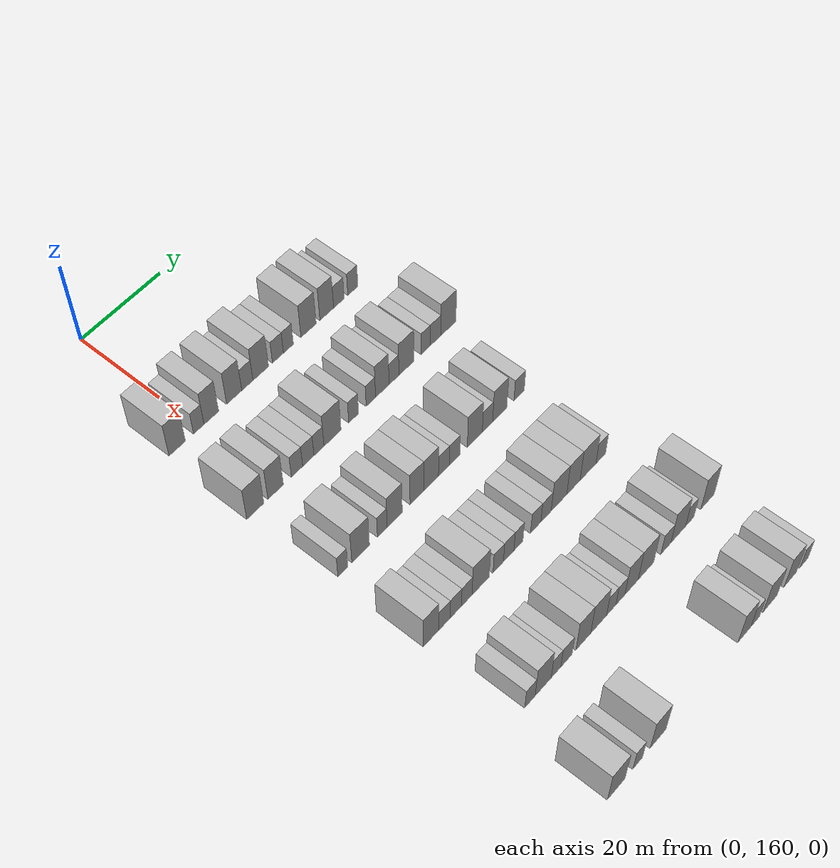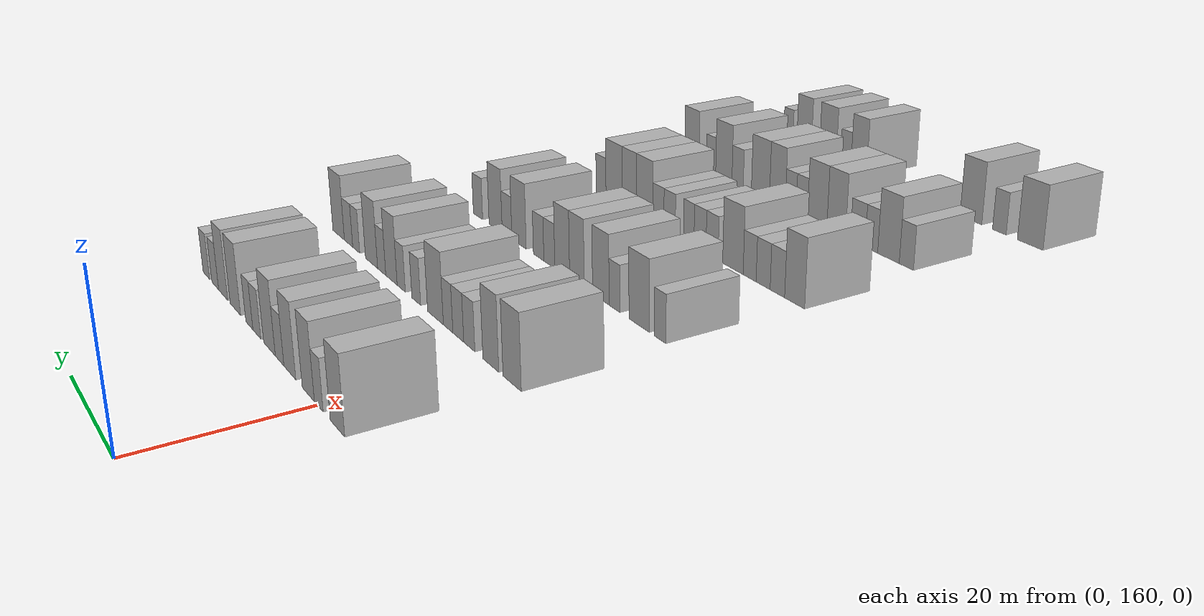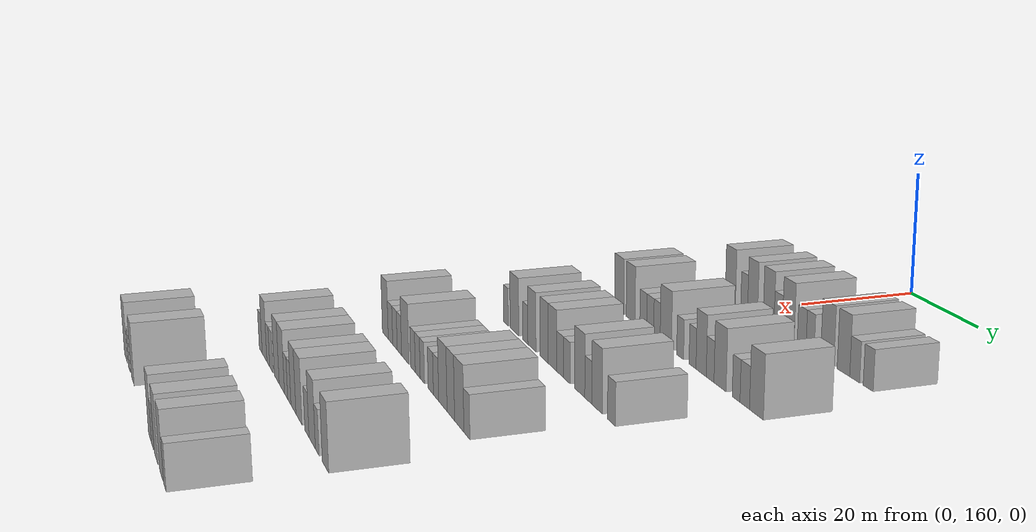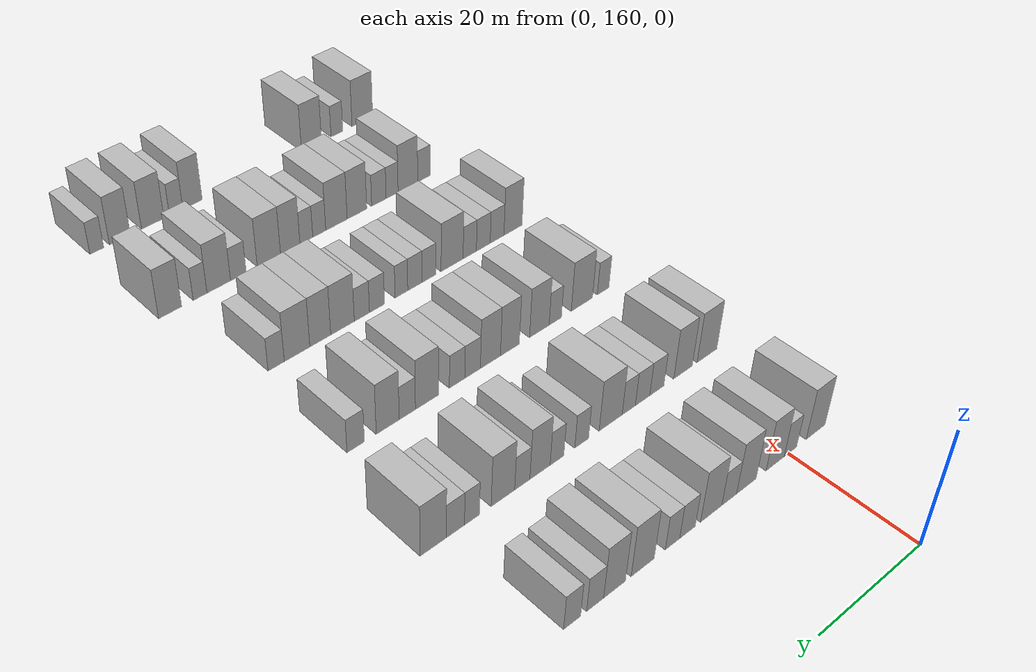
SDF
<sdf version="1.6">
 <world name="default">
  <model name="building_131">
   <static>1</static>
   <pose>25.0000 154.3337 0 0.000000 0.000000 0.000000</pose>
   <link name="link">
    <pose>0 0 4.50 0 0 0</pose>
    <collision name="collision"><geometry><box><size>10.0000 3.9862 9.0000</size></box></geometry></collision>
    <visual name="visual">
     <cast_shadows>0</cast_shadows>
     <geometry><box><size>10.0000 3.9862 9.0000</size></box></geometry>
     <material>
      <script>
       <uri>model://HANNAS_wall/materials/scripts</uri>
       <uri>model://HANNAS_wall/materials/textures</uri>
       <name>vrc/HANNAS_wall</name>
      </script>
     </material>
    </visual>
   </link>
  </model>
  <model name="building_132">
   <static>1</static>
   <pose>25.0000 159.6151 0 0.000000 0.000000 0.000000</pose>
   <link name="link">
    <pose>0 0 3.00 0 0 0</pose>
    <collision name="collision"><geometry><box><size>10.0000 2.5767 6.0000</size></box></geometry></collision>
    <visual name="visual">
     <cast_shadows>0</cast_shadows>
     <geometry><box><size>10.0000 2.5767 6.0000</size></box></geometry>
     <material>
      <script>
       <uri>model://HANNAS_wall/materials/scripts</uri>
       <uri>model://HANNAS_wall/materials/textures</uri>
       <name>vrc/HANNAS_wall</name>
      </script>
     </material>
    </visual>
   </link>
  </model>
  <model name="building_133">
   <static>1</static>
   <pose>25.0000 162.7344 0 0.000000 0.000000 0.000000</pose>
   <link name="link">
    <pose>0 0 4.50 0 0 0</pose>
    <collision name="collision"><geometry><box><size>10.0000 3.6619 9.0000</size></box></geometry></collision>
    <visual name="visual">
     <cast_shadows>0</cast_shadows>
     <geometry><box><size>10.0000 3.6619 9.0000</size></box></geometry>
     <material>
      <script>
       <uri>model://HANNAS_wall/materials/scripts</uri>
       <uri>model://HANNAS_wall/materials/textures</uri>
       <name>vrc/HANNAS_wall</name>
      </script>
     </material>
    </visual>
   </link>
  </model>
  <model name="building_134">
   <static>1</static>
   <pose>25.0000 168.4861 0 0.000000 0.000000 0.000000</pose>
   <link name="link">
    <pose>0 0 4.50 0 0 0</pose>
    <collision name="collision"><geometry><box><size>10.0000 3.8416 9.0000</size></box></geometry></collision>
    <visual name="visual">
     <cast_shadows>0</cast_shadows>
     <geometry><box><size>10.0000 3.8416 9.0000</size></box></geometry>
     <material>
      <script>
       <uri>model://HANNAS_wall/materials/scripts</uri>
       <uri>model://HANNAS_wall/materials/textures</uri>
       <name>vrc/HANNAS_wall</name>
      </script>
     </material>
    </visual>
   </link>
  </model>
  <model name="building_135">
   <static>1</static>
   <pose>25.0000 171.8404 0 0.000000 0.000000 0.000000</pose>
   <link name="link">
    <pose>0 0 3.00 0 0 0</pose>
    <collision name="collision"><geometry><box><size>10.0000 2.8668 6.0000</size></box></geometry></collision>
    <visual name="visual">
     <cast_shadows>0</cast_shadows>
     <geometry><box><size>10.0000 2.8668 6.0000</size></box></geometry>
     <material>
      <script>
       <uri>model://HANNAS_wall/materials/scripts</uri>
       <uri>model://HANNAS_wall/materials/textures</uri>
       <name>vrc/HANNAS_wall</name>
      </script>
     </material>
    </visual>
   </link>
  </model>
  <model name="building_136">
   <static>1</static>
   <pose>25.0000 175.2895 0 0.000000 0.000000 0.000000</pose>
   <link name="link">
    <pose>0 0 4.50 0 0 0</pose>
    <collision name="collision"><geometry><box><size>10.0000 4.0314 9.0000</size></box></geometry></collision>
    <visual name="visual">
     <cast_shadows>0</cast_shadows>
     <geometry><box><size>10.0000 4.0314 9.0000</size></box></geometry>
     <material>
      <script>
       <uri>model://HANNAS_wall/materials/scripts</uri>
       <uri>model://HANNAS_wall/materials/textures</uri>
       <name>vrc/HANNAS_wall</name>
      </script>
     </material>
    </visual>
   </link>
  </model>
  <model name="building_137">
   <static>1</static>
   <pose>25.0000 179.7443 0 0.000000 0.000000 0.000000</pose>
   <link name="link">
    <pose>0 0 3.00 0 0 0</pose>
    <collision name="collision"><geometry><box><size>10.0000 2.8782 6.0000</size></box></geometry></collision>
    <visual name="visual">
     <cast_shadows>0</cast_shadows>
     <geometry><box><size>10.0000 2.8782 6.0000</size></box></geometry>
     <material>
      <script>
       <uri>model://HANNAS_wall/materials/scripts</uri>
       <uri>model://HANNAS_wall/materials/textures</uri>
       <name>vrc/HANNAS_wall</name>
      </script>
     </material>
    </visual>
   </link>
  </model>
  <model name="building_138">
   <static>1</static>
   <pose>25.0000 182.4941 0 0.000000 0.000000 0.000000</pose>
   <link name="link">
    <pose>0 0 3.00 0 0 0</pose>
    <collision name="collision"><geometry><box><size>10.0000 2.6215 6.0000</size></box></geometry></collision>
    <visual name="visual">
     <cast_shadows>0</cast_shadows>
     <geometry><box><size>10.0000 2.6215 6.0000</size></box></geometry>
     <material>
      <script>
       <uri>model://HANNAS_wall/materials/scripts</uri>
       <uri>model://HANNAS_wall/materials/textures</uri>
       <name>vrc/HANNAS_wall</name>
      </script>
     </material>
    </visual>
   </link>
  </model>
  <model name="building_139">
   <static>1</static>
   <pose>25.0000 187.8388 0 0.000000 0.000000 0.000000</pose>
   <link name="link">
    <pose>0 0 4.50 0 0 0</pose>
    <collision name="collision"><geometry><box><size>10.0000 4.0679 9.0000</size></box></geometry></collision>
    <visual name="visual">
     <cast_shadows>0</cast_shadows>
     <geometry><box><size>10.0000 4.0679 9.0000</size></box></geometry>
     <material>
      <script>
       <uri>model://HANNAS_wall/materials/scripts</uri>
       <uri>model://HANNAS_wall/materials/textures</uri>
       <name>vrc/HANNAS_wall</name>
      </script>
     </material>
    </visual>
   </link>
  </model>
  <model name="building_140">
   <static>1</static>
   <pose>25.0000 192.7403 0 0.000000 0.000000 0.000000</pose>
   <link name="link">
    <pose>0 0 4.50 0 0 0</pose>
    <collision name="collision"><geometry><box><size>10.0000 3.7349 9.0000</size></box></geometry></collision>
    <visual name="visual">
     <cast_shadows>0</cast_shadows>
     <geometry><box><size>10.0000 3.7349 9.0000</size></box></geometry>
     <material>
      <script>
       <uri>model://HANNAS_wall/materials/scripts</uri>
       <uri>model://HANNAS_wall/materials/textures</uri>
       <name>vrc/HANNAS_wall</name>
      </script>
     </material>
    </visual>
   </link>
  </model>
  <model name="building_141">
   <static>1</static>
   <pose>25.0000 196.0452 0 0.000000 0.000000 0.000000</pose>
   <link name="link">
    <pose>0 0 3.00 0 0 0</pose>
    <collision name="collision"><geometry><box><size>10.0000 2.8749 6.0000</size></box></geometry></collision>
    <visual name="visual">
     <cast_shadows>0</cast_shadows>
     <geometry><box><size>10.0000 2.8749 6.0000</size></box></geometry>
     <material>
      <script>
       <uri>model://HANNAS_wall/materials/scripts</uri>
       <uri>model://HANNAS_wall/materials/textures</uri>
       <name>vrc/HANNAS_wall</name>
      </script>
     </material>
    </visual>
   </link>
  </model>
  <model name="building_142">
   <static>1</static>
   <pose>25.0000 199.8850 0 0.000000 0.000000 0.000000</pose>
   <link name="link">
    <pose>0 0 3.00 0 0 0</pose>
    <collision name="collision"><geometry><box><size>10.0000 2.8047 6.0000</size></box></geometry></collision>
    <visual name="visual">
     <cast_shadows>0</cast_shadows>
     <geometry><box><size>10.0000 2.8047 6.0000</size></box></geometry>
     <material>
      <script>
       <uri>model://HANNAS_wall/materials/scripts</uri>
       <uri>model://HANNAS_wall/materials/textures</uri>
       <name>vrc/HANNAS_wall</name>
      </script>
     </material>
    </visual>
   </link>
  </model>
  <model name="building_296">
   <static>1</static>
   <pose>44.0000 153.7739 0 0.000000 0.000000 0.000000</pose>
   <link name="link">
    <pose>0 0 4.50 0 0 0</pose>
    <collision name="collision"><geometry><box><size>10.0000 4.1835 9.0000</size></box></geometry></collision>
    <visual name="visual">
     <cast_shadows>0</cast_shadows>
     <geometry><box><size>10.0000 4.1835 9.0000</size></box></geometry>
     <material>
      <script>
       <uri>model://HANNAS_wall/materials/scripts</uri>
       <uri>model://HANNAS_wall/materials/textures</uri>
       <name>vrc/HANNAS_wall</name>
      </script>
     </material>
    </visual>
   </link>
  </model>
  <model name="building_297">
   <static>1</static>
   <pose>44.0000 158.7824 0 0.000000 0.000000 0.000000</pose>
   <link name="link">
    <pose>0 0 4.50 0 0 0</pose>
    <collision name="collision"><geometry><box><size>10.0000 3.8334 9.0000</size></box></geometry></collision>
    <visual name="visual">
     <cast_shadows>0</cast_shadows>
     <geometry><box><size>10.0000 3.8334 9.0000</size></box></geometry>
     <material>
      <script>
       <uri>model://HANNAS_wall/materials/scripts</uri>
       <uri>model://HANNAS_wall/materials/textures</uri>
       <name>vrc/HANNAS_wall</name>
      </script>
     </material>
    </visual>
   </link>
  </model>
  <model name="building_298">
   <static>1</static>
   <pose>44.0000 164.1197 0 0.000000 0.000000 0.000000</pose>
   <link name="link">
    <pose>0 0 3.00 0 0 0</pose>
    <collision name="collision"><geometry><box><size>10.0000 2.8412 6.0000</size></box></geometry></collision>
    <visual name="visual">
     <cast_shadows>0</cast_shadows>
     <geometry><box><size>10.0000 2.8412 6.0000</size></box></geometry>
     <material>
      <script>
       <uri>model://HANNAS_wall/materials/scripts</uri>
       <uri>model://HANNAS_wall/materials/textures</uri>
       <name>vrc/HANNAS_wall</name>
      </script>
     </material>
    </visual>
   </link>
  </model>
  <model name="building_299">
   <static>1</static>
   <pose>44.0000 166.9722 0 0.000000 0.000000 0.000000</pose>
   <link name="link">
    <pose>0 0 3.00 0 0 0</pose>
    <collision name="collision"><geometry><box><size>10.0000 2.8637 6.0000</size></box></geometry></collision>
    <visual name="visual">
     <cast_shadows>0</cast_shadows>
     <geometry><box><size>10.0000 2.8637 6.0000</size></box></geometry>
     <material>
      <script>
       <uri>model://HANNAS_wall/materials/scripts</uri>
       <uri>model://HANNAS_wall/materials/textures</uri>
       <name>vrc/HANNAS_wall</name>
      </script>
     </material>
    </visual>
   </link>
  </model>
  <model name="building_300">
   <static>1</static>
   <pose>44.0000 169.6895 0 0.000000 0.000000 0.000000</pose>
   <link name="link">
    <pose>0 0 3.00 0 0 0</pose>
    <collision name="collision"><geometry><box><size>10.0000 2.5710 6.0000</size></box></geometry></collision>
    <visual name="visual">
     <cast_shadows>0</cast_shadows>
     <geometry><box><size>10.0000 2.5710 6.0000</size></box></geometry>
     <material>
      <script>
       <uri>model://HANNAS_wall/materials/scripts</uri>
       <uri>model://HANNAS_wall/materials/textures</uri>
       <name>vrc/HANNAS_wall</name>
      </script>
     </material>
    </visual>
   </link>
  </model>
  <model name="building_301">
   <static>1</static>
   <pose>44.0000 173.1825 0 0.000000 0.000000 0.000000</pose>
   <link name="link">
    <pose>0 0 4.50 0 0 0</pose>
    <collision name="collision"><geometry><box><size>10.0000 4.4149 9.0000</size></box></geometry></collision>
    <visual name="visual">
     <cast_shadows>0</cast_shadows>
     <geometry><box><size>10.0000 4.4149 9.0000</size></box></geometry>
     <material>
      <script>
       <uri>model://HANNAS_wall/materials/scripts</uri>
       <uri>model://HANNAS_wall/materials/textures</uri>
       <name>vrc/HANNAS_wall</name>
      </script>
     </material>
    </visual>
   </link>
  </model>
  <model name="building_302">
   <static>1</static>
   <pose>44.0000 178.6826 0 0.000000 0.000000 0.000000</pose>
   <link name="link">
    <pose>0 0 3.00 0 0 0</pose>
    <collision name="collision"><geometry><box><size>10.0000 2.5852 6.0000</size></box></geometry></collision>
    <visual name="visual">
     <cast_shadows>0</cast_shadows>
     <geometry><box><size>10.0000 2.5852 6.0000</size></box></geometry>
     <material>
      <script>
       <uri>model://HANNAS_wall/materials/scripts</uri>
       <uri>model://HANNAS_wall/materials/textures</uri>
       <name>vrc/HANNAS_wall</name>
      </script>
     </material>
    </visual>
   </link>
  </model>
  <model name="building_303">
   <static>1</static>
   <pose>44.0000 183.2300 0 0.000000 0.000000 0.000000</pose>
   <link name="link">
    <pose>0 0 3.00 0 0 0</pose>
    <collision name="collision"><geometry><box><size>10.0000 2.5097 6.0000</size></box></geometry></collision>
    <visual name="visual">
     <cast_shadows>0</cast_shadows>
     <geometry><box><size>10.0000 2.5097 6.0000</size></box></geometry>
     <material>
      <script>
       <uri>model://HANNAS_wall/materials/scripts</uri>
       <uri>model://HANNAS_wall/materials/textures</uri>
       <name>vrc/HANNAS_wall</name>
      </script>
     </material>
    </visual>
   </link>
  </model>
  <model name="building_304">
   <static>1</static>
   <pose>44.0000 186.2967 0 0.000000 0.000000 0.000000</pose>
   <link name="link">
    <pose>0 0 4.50 0 0 0</pose>
    <collision name="collision"><geometry><box><size>10.0000 3.6238 9.0000</size></box></geometry></collision>
    <visual name="visual">
     <cast_shadows>0</cast_shadows>
     <geometry><box><size>10.0000 3.6238 9.0000</size></box></geometry>
     <material>
      <script>
       <uri>model://HANNAS_wall/materials/scripts</uri>
       <uri>model://HANNAS_wall/materials/textures</uri>
       <name>vrc/HANNAS_wall</name>
      </script>
     </material>
    </visual>
   </link>
  </model>
  <model name="building_305">
   <static>1</static>
   <pose>44.0000 189.4411 0 0.000000 0.000000 0.000000</pose>
   <link name="link">
    <pose>0 0 3.00 0 0 0</pose>
    <collision name="collision"><geometry><box><size>10.0000 2.6650 6.0000</size></box></geometry></collision>
    <visual name="visual">
     <cast_shadows>0</cast_shadows>
     <geometry><box><size>10.0000 2.6650 6.0000</size></box></geometry>
     <material>
      <script>
       <uri>model://HANNAS_wall/materials/scripts</uri>
       <uri>model://HANNAS_wall/materials/textures</uri>
       <name>vrc/HANNAS_wall</name>
      </script>
     </material>
    </visual>
   </link>
  </model>
  <model name="building_306">
   <static>1</static>
   <pose>44.0000 192.8111 0 0.000000 0.000000 0.000000</pose>
   <link name="link">
    <pose>0 0 4.50 0 0 0</pose>
    <collision name="collision"><geometry><box><size>10.0000 4.0751 9.0000</size></box></geometry></collision>
    <visual name="visual">
     <cast_shadows>0</cast_shadows>
     <geometry><box><size>10.0000 4.0751 9.0000</size></box></geometry>
     <material>
      <script>
       <uri>model://HANNAS_wall/materials/scripts</uri>
       <uri>model://HANNAS_wall/materials/textures</uri>
       <name>vrc/HANNAS_wall</name>
      </script>
     </material>
    </visual>
   </link>
  </model>
  <model name="building_307">
   <static>1</static>
   <pose>44.0000 198.0953 0 0.000000 0.000000 0.000000</pose>
   <link name="link">
    <pose>0 0 3.00 0 0 0</pose>
    <collision name="collision"><geometry><box><size>10.0000 2.4933 6.0000</size></box></geometry></collision>
    <visual name="visual">
     <cast_shadows>0</cast_shadows>
     <geometry><box><size>10.0000 2.4933 6.0000</size></box></geometry>
     <material>
      <script>
       <uri>model://HANNAS_wall/materials/scripts</uri>
       <uri>model://HANNAS_wall/materials/textures</uri>
       <name>vrc/HANNAS_wall</name>
      </script>
     </material>
    </visual>
   </link>
  </model>
  <model name="building_308">
   <static>1</static>
   <pose>44.0000 200.8398 0 0.000000 0.000000 0.000000</pose>
   <link name="link">
    <pose>0 0 3.00 0 0 0</pose>
    <collision name="collision"><geometry><box><size>10.0000 2.9956 6.0000</size></box></geometry></collision>
    <visual name="visual">
     <cast_shadows>0</cast_shadows>
     <geometry><box><size>10.0000 2.9956 6.0000</size></box></geometry>
     <material>
      <script>
       <uri>model://HANNAS_wall/materials/scripts</uri>
       <uri>model://HANNAS_wall/materials/textures</uri>
       <name>vrc/HANNAS_wall</name>
      </script>
     </material>
    </visual>
   </link>
  </model>
  <model name="building_309">
   <static>1</static>
   <pose>44.0000 204.4687 0 0.000000 0.000000 0.000000</pose>
   <link name="link">
    <pose>0 0 4.50 0 0 0</pose>
    <collision name="collision"><geometry><box><size>10.0000 4.2623 9.0000</size></box></geometry></collision>
    <visual name="visual">
     <cast_shadows>0</cast_shadows>
     <geometry><box><size>10.0000 4.2623 9.0000</size></box></geometry>
     <material>
      <script>
       <uri>model://HANNAS_wall/materials/scripts</uri>
       <uri>model://HANNAS_wall/materials/textures</uri>
       <name>vrc/HANNAS_wall</name>
      </script>
     </material>
    </visual>
   </link>
  </model>
  <model name="building_465">
   <static>1</static>
   <pose>63.0000 154.5711 0 0.000000 0.000000 0.000000</pose>
   <link name="link">
    <pose>0 0 3.00 0 0 0</pose>
    <collision name="collision"><geometry><box><size>10.0000 2.4377 6.0000</size></box></geometry></collision>
    <visual name="visual">
     <cast_shadows>0</cast_shadows>
     <geometry><box><size>10.0000 2.4377 6.0000</size></box></geometry>
     <material>
      <script>
       <uri>model://HANNAS_wall/materials/scripts</uri>
       <uri>model://HANNAS_wall/materials/textures</uri>
       <name>vrc/HANNAS_wall</name>
      </script>
     </material>
    </visual>
   </link>
  </model>
  <model name="building_466">
   <static>1</static>
   <pose>63.0000 158.9929 0 0.000000 0.000000 0.000000</pose>
   <link name="link">
    <pose>0 0 4.50 0 0 0</pose>
    <collision name="collision"><geometry><box><size>10.0000 4.4060 9.0000</size></box></geometry></collision>
    <visual name="visual">
     <cast_shadows>0</cast_shadows>
     <geometry><box><size>10.0000 4.4060 9.0000</size></box></geometry>
     <material>
      <script>
       <uri>model://HANNAS_wall/materials/scripts</uri>
       <uri>model://HANNAS_wall/materials/textures</uri>
       <name>vrc/HANNAS_wall</name>
      </script>
     </material>
    </visual>
   </link>
  </model>
  <model name="building_467">
   <static>1</static>
   <pose>63.0000 164.4352 0 0.000000 0.000000 0.000000</pose>
   <link name="link">
    <pose>0 0 3.00 0 0 0</pose>
    <collision name="collision"><geometry><box><size>10.0000 2.4786 6.0000</size></box></geometry></collision>
    <visual name="visual">
     <cast_shadows>0</cast_shadows>
     <geometry><box><size>10.0000 2.4786 6.0000</size></box></geometry>
     <material>
      <script>
       <uri>model://HANNAS_wall/materials/scripts</uri>
       <uri>model://HANNAS_wall/materials/textures</uri>
       <name>vrc/HANNAS_wall</name>
      </script>
     </material>
    </visual>
   </link>
  </model>
  <model name="building_468">
   <static>1</static>
   <pose>63.0000 167.6149 0 0.000000 0.000000 0.000000</pose>
   <link name="link">
    <pose>0 0 4.50 0 0 0</pose>
    <collision name="collision"><geometry><box><size>10.0000 3.8808 9.0000</size></box></geometry></collision>
    <visual name="visual">
     <cast_shadows>0</cast_shadows>
     <geometry><box><size>10.0000 3.8808 9.0000</size></box></geometry>
     <material>
      <script>
       <uri>model://HANNAS_wall/materials/scripts</uri>
       <uri>model://HANNAS_wall/materials/textures</uri>
       <name>vrc/HANNAS_wall</name>
      </script>
     </material>
    </visual>
   </link>
  </model>
  <model name="building_469">
   <static>1</static>
   <pose>63.0000 173.3742 0 0.000000 0.000000 0.000000</pose>
   <link name="link">
    <pose>0 0 4.50 0 0 0</pose>
    <collision name="collision"><geometry><box><size>10.0000 3.6379 9.0000</size></box></geometry></collision>
    <visual name="visual">
     <cast_shadows>0</cast_shadows>
     <geometry><box><size>10.0000 3.6379 9.0000</size></box></geometry>
     <material>
      <script>
       <uri>model://HANNAS_wall/materials/scripts</uri>
       <uri>model://HANNAS_wall/materials/textures</uri>
       <name>vrc/HANNAS_wall</name>
      </script>
     </material>
    </visual>
   </link>
  </model>
  <model name="building_470">
   <static>1</static>
   <pose>63.0000 177.0925 0 0.000000 0.000000 0.000000</pose>
   <link name="link">
    <pose>0 0 4.50 0 0 0</pose>
    <collision name="collision"><geometry><box><size>10.0000 3.7987 9.0000</size></box></geometry></collision>
    <visual name="visual">
     <cast_shadows>0</cast_shadows>
     <geometry><box><size>10.0000 3.7987 9.0000</size></box></geometry>
     <material>
      <script>
       <uri>model://HANNAS_wall/materials/scripts</uri>
       <uri>model://HANNAS_wall/materials/textures</uri>
       <name>vrc/HANNAS_wall</name>
      </script>
     </material>
    </visual>
   </link>
  </model>
  <model name="building_471">
   <static>1</static>
   <pose>63.0000 180.4448 0 0.000000 0.000000 0.000000</pose>
   <link name="link">
    <pose>0 0 3.00 0 0 0</pose>
    <collision name="collision"><geometry><box><size>10.0000 2.9060 6.0000</size></box></geometry></collision>
    <visual name="visual">
     <cast_shadows>0</cast_shadows>
     <geometry><box><size>10.0000 2.9060 6.0000</size></box></geometry>
     <material>
      <script>
       <uri>model://HANNAS_wall/materials/scripts</uri>
       <uri>model://HANNAS_wall/materials/textures</uri>
       <name>vrc/HANNAS_wall</name>
      </script>
     </material>
    </visual>
   </link>
  </model>
  <model name="building_472">
   <static>1</static>
   <pose>63.0000 183.3127 0 0.000000 0.000000 0.000000</pose>
   <link name="link">
    <pose>0 0 3.00 0 0 0</pose>
    <collision name="collision"><geometry><box><size>10.0000 2.8298 6.0000</size></box></geometry></collision>
    <visual name="visual">
     <cast_shadows>0</cast_shadows>
     <geometry><box><size>10.0000 2.8298 6.0000</size></box></geometry>
     <material>
      <script>
       <uri>model://HANNAS_wall/materials/scripts</uri>
       <uri>model://HANNAS_wall/materials/textures</uri>
       <name>vrc/HANNAS_wall</name>
      </script>
     </material>
    </visual>
   </link>
  </model>
  <model name="building_473">
   <static>1</static>
   <pose>63.0000 188.7681 0 0.000000 0.000000 0.000000</pose>
   <link name="link">
    <pose>0 0 4.50 0 0 0</pose>
    <collision name="collision"><geometry><box><size>10.0000 4.0810 9.0000</size></box></geometry></collision>
    <visual name="visual">
     <cast_shadows>0</cast_shadows>
     <geometry><box><size>10.0000 4.0810 9.0000</size></box></geometry>
     <material>
      <script>
       <uri>model://HANNAS_wall/materials/scripts</uri>
       <uri>model://HANNAS_wall/materials/textures</uri>
       <name>vrc/HANNAS_wall</name>
      </script>
     </material>
    </visual>
   </link>
  </model>
  <model name="building_474">
   <static>1</static>
   <pose>63.0000 192.2325 0 0.000000 0.000000 0.000000</pose>
   <link name="link">
    <pose>0 0 3.00 0 0 0</pose>
    <collision name="collision"><geometry><box><size>10.0000 2.8479 6.0000</size></box></geometry></collision>
    <visual name="visual">
     <cast_shadows>0</cast_shadows>
     <geometry><box><size>10.0000 2.8479 6.0000</size></box></geometry>
     <material>
      <script>
       <uri>model://HANNAS_wall/materials/scripts</uri>
       <uri>model://HANNAS_wall/materials/textures</uri>
       <name>vrc/HANNAS_wall</name>
      </script>
     </material>
    </visual>
   </link>
  </model>
  <model name="building_475">
   <static>1</static>
   <pose>63.0000 195.6344 0 0.000000 0.000000 0.000000</pose>
   <link name="link">
    <pose>0 0 4.50 0 0 0</pose>
    <collision name="collision"><geometry><box><size>10.0000 3.9558 9.0000</size></box></geometry></collision>
    <visual name="visual">
     <cast_shadows>0</cast_shadows>
     <geometry><box><size>10.0000 3.9558 9.0000</size></box></geometry>
     <material>
      <script>
       <uri>model://HANNAS_wall/materials/scripts</uri>
       <uri>model://HANNAS_wall/materials/textures</uri>
       <name>vrc/HANNAS_wall</name>
      </script>
     </material>
    </visual>
   </link>
  </model>
  <model name="building_476">
   <static>1</static>
   <pose>63.0000 201.0726 0 0.000000 0.000000 0.000000</pose>
   <link name="link">
    <pose>0 0 3.00 0 0 0</pose>
    <collision name="collision"><geometry><box><size>10.0000 2.9207 6.0000</size></box></geometry></collision>
    <visual name="visual">
     <cast_shadows>0</cast_shadows>
     <geometry><box><size>10.0000 2.9207 6.0000</size></box></geometry>
     <material>
      <script>
       <uri>model://HANNAS_wall/materials/scripts</uri>
       <uri>model://HANNAS_wall/materials/textures</uri>
       <name>vrc/HANNAS_wall</name>
      </script>
     </material>
    </visual>
   </link>
  </model>
  <model name="building_644">
   <static>1</static>
   <pose>82.0000 154.4908 0 0.000000 0.000000 0.000000</pose>
   <link name="link">
    <pose>0 0 4.50 0 0 0</pose>
    <collision name="collision"><geometry><box><size>10.0000 3.8363 9.0000</size></box></geometry></collision>
    <visual name="visual">
     <cast_shadows>0</cast_shadows>
     <geometry><box><size>10.0000 3.8363 9.0000</size></box></geometry>
     <material>
      <script>
       <uri>model://HANNAS_wall/materials/scripts</uri>
       <uri>model://HANNAS_wall/materials/textures</uri>
       <name>vrc/HANNAS_wall</name>
      </script>
     </material>
    </visual>
   </link>
  </model>
  <model name="building_645">
   <static>1</static>
   <pose>82.0000 157.8447 0 0.000000 0.000000 0.000000</pose>
   <link name="link">
    <pose>0 0 3.00 0 0 0</pose>
    <collision name="collision"><geometry><box><size>10.0000 2.8716 6.0000</size></box></geometry></collision>
    <visual name="visual">
     <cast_shadows>0</cast_shadows>
     <geometry><box><size>10.0000 2.8716 6.0000</size></box></geometry>
     <material>
      <script>
       <uri>model://HANNAS_wall/materials/scripts</uri>
       <uri>model://HANNAS_wall/materials/textures</uri>
       <name>vrc/HANNAS_wall</name>
      </script>
     </material>
    </visual>
   </link>
  </model>
  <model name="building_646">
   <static>1</static>
   <pose>82.0000 160.7059 0 0.000000 0.000000 0.000000</pose>
   <link name="link">
    <pose>0 0 3.00 0 0 0</pose>
    <collision name="collision"><geometry><box><size>10.0000 2.8508 6.0000</size></box></geometry></collision>
    <visual name="visual">
     <cast_shadows>0</cast_shadows>
     <geometry><box><size>10.0000 2.8508 6.0000</size></box></geometry>
     <material>
      <script>
       <uri>model://HANNAS_wall/materials/scripts</uri>
       <uri>model://HANNAS_wall/materials/textures</uri>
       <name>vrc/HANNAS_wall</name>
      </script>
     </material>
    </visual>
   </link>
  </model>
  <model name="building_647">
   <static>1</static>
   <pose>82.0000 163.4835 0 0.000000 0.000000 0.000000</pose>
   <link name="link">
    <pose>0 0 3.00 0 0 0</pose>
    <collision name="collision"><geometry><box><size>10.0000 2.7044 6.0000</size></box></geometry></collision>
    <visual name="visual">
     <cast_shadows>0</cast_shadows>
     <geometry><box><size>10.0000 2.7044 6.0000</size></box></geometry>
     <material>
      <script>
       <uri>model://HANNAS_wall/materials/scripts</uri>
       <uri>model://HANNAS_wall/materials/textures</uri>
       <name>vrc/HANNAS_wall</name>
      </script>
     </material>
    </visual>
   </link>
  </model>
  <model name="building_648">
   <static>1</static>
   <pose>82.0000 167.0460 0 0.000000 0.000000 0.000000</pose>
   <link name="link">
    <pose>0 0 4.50 0 0 0</pose>
    <collision name="collision"><geometry><box><size>10.0000 4.4205 9.0000</size></box></geometry></collision>
    <visual name="visual">
     <cast_shadows>0</cast_shadows>
     <geometry><box><size>10.0000 4.4205 9.0000</size></box></geometry>
     <material>
      <script>
       <uri>model://HANNAS_wall/materials/scripts</uri>
       <uri>model://HANNAS_wall/materials/textures</uri>
       <name>vrc/HANNAS_wall</name>
      </script>
     </material>
    </visual>
   </link>
  </model>
  <model name="building_649">
   <static>1</static>
   <pose>82.0000 171.6245 0 0.000000 0.000000 0.000000</pose>
   <link name="link">
    <pose>0 0 3.00 0 0 0</pose>
    <collision name="collision"><geometry><box><size>10.0000 2.7365 6.0000</size></box></geometry></collision>
    <visual name="visual">
     <cast_shadows>0</cast_shadows>
     <geometry><box><size>10.0000 2.7365 6.0000</size></box></geometry>
     <material>
      <script>
       <uri>model://HANNAS_wall/materials/scripts</uri>
       <uri>model://HANNAS_wall/materials/textures</uri>
       <name>vrc/HANNAS_wall</name>
      </script>
     </material>
    </visual>
   </link>
  </model>
  <model name="building_650">
   <static>1</static>
   <pose>82.0000 174.3763 0 0.000000 0.000000 0.000000</pose>
   <link name="link">
    <pose>0 0 3.00 0 0 0</pose>
    <collision name="collision"><geometry><box><size>10.0000 2.7672 6.0000</size></box></geometry></collision>
    <visual name="visual">
     <cast_shadows>0</cast_shadows>
     <geometry><box><size>10.0000 2.7672 6.0000</size></box></geometry>
     <material>
      <script>
       <uri>model://HANNAS_wall/materials/scripts</uri>
       <uri>model://HANNAS_wall/materials/textures</uri>
       <name>vrc/HANNAS_wall</name>
      </script>
     </material>
    </visual>
   </link>
  </model>
  <model name="building_651">
   <static>1</static>
   <pose>82.0000 176.9749 0 0.000000 0.000000 0.000000</pose>
   <link name="link">
    <pose>0 0 3.00 0 0 0</pose>
    <collision name="collision"><geometry><box><size>10.0000 2.4300 6.0000</size></box></geometry></collision>
    <visual name="visual">
     <cast_shadows>0</cast_shadows>
     <geometry><box><size>10.0000 2.4300 6.0000</size></box></geometry>
     <material>
      <script>
       <uri>model://HANNAS_wall/materials/scripts</uri>
       <uri>model://HANNAS_wall/materials/textures</uri>
       <name>vrc/HANNAS_wall</name>
      </script>
     </material>
    </visual>
   </link>
  </model>
  <model name="building_652">
   <static>1</static>
   <pose>82.0000 181.5948 0 0.000000 0.000000 0.000000</pose>
   <link name="link">
    <pose>0 0 3.00 0 0 0</pose>
    <collision name="collision"><geometry><box><size>10.0000 2.8097 6.0000</size></box></geometry></collision>
    <visual name="visual">
     <cast_shadows>0</cast_shadows>
     <geometry><box><size>10.0000 2.8097 6.0000</size></box></geometry>
     <material>
      <script>
       <uri>model://HANNAS_wall/materials/scripts</uri>
       <uri>model://HANNAS_wall/materials/textures</uri>
       <name>vrc/HANNAS_wall</name>
      </script>
     </material>
    </visual>
   </link>
  </model>
  <model name="building_653">
   <static>1</static>
   <pose>82.0000 184.3982 0 0.000000 0.000000 0.000000</pose>
   <link name="link">
    <pose>0 0 3.00 0 0 0</pose>
    <collision name="collision"><geometry><box><size>10.0000 2.7972 6.0000</size></box></geometry></collision>
    <visual name="visual">
     <cast_shadows>0</cast_shadows>
     <geometry><box><size>10.0000 2.7972 6.0000</size></box></geometry>
     <material>
      <script>
       <uri>model://HANNAS_wall/materials/scripts</uri>
       <uri>model://HANNAS_wall/materials/textures</uri>
       <name>vrc/HANNAS_wall</name>
      </script>
     </material>
    </visual>
   </link>
  </model>
  <model name="building_654">
   <static>1</static>
   <pose>82.0000 187.9408 0 0.000000 0.000000 0.000000</pose>
   <link name="link">
    <pose>0 0 4.50 0 0 0</pose>
    <collision name="collision"><geometry><box><size>10.0000 4.2880 9.0000</size></box></geometry></collision>
    <visual name="visual">
     <cast_shadows>0</cast_shadows>
     <geometry><box><size>10.0000 4.2880 9.0000</size></box></geometry>
     <material>
      <script>
       <uri>model://HANNAS_wall/materials/scripts</uri>
       <uri>model://HANNAS_wall/materials/textures</uri>
       <name>vrc/HANNAS_wall</name>
      </script>
     </material>
    </visual>
   </link>
  </model>
  <model name="building_655">
   <static>1</static>
   <pose>82.0000 191.9452 0 0.000000 0.000000 0.000000</pose>
   <link name="link">
    <pose>0 0 4.50 0 0 0</pose>
    <collision name="collision"><geometry><box><size>10.0000 3.7209 9.0000</size></box></geometry></collision>
    <visual name="visual">
     <cast_shadows>0</cast_shadows>
     <geometry><box><size>10.0000 3.7209 9.0000</size></box></geometry>
     <material>
      <script>
       <uri>model://HANNAS_wall/materials/scripts</uri>
       <uri>model://HANNAS_wall/materials/textures</uri>
       <name>vrc/HANNAS_wall</name>
      </script>
     </material>
    </visual>
   </link>
  </model>
  <model name="building_656">
   <static>1</static>
   <pose>82.0000 196.0333 0 0.000000 0.000000 0.000000</pose>
   <link name="link">
    <pose>0 0 4.50 0 0 0</pose>
    <collision name="collision"><geometry><box><size>10.0000 4.4553 9.0000</size></box></geometry></collision>
    <visual name="visual">
     <cast_shadows>0</cast_shadows>
     <geometry><box><size>10.0000 4.4553 9.0000</size></box></geometry>
     <material>
      <script>
       <uri>model://HANNAS_wall/materials/scripts</uri>
       <uri>model://HANNAS_wall/materials/textures</uri>
       <name>vrc/HANNAS_wall</name>
      </script>
     </material>
    </visual>
   </link>
  </model>
  <model name="building_657">
   <static>1</static>
   <pose>82.0000 199.6560 0 0.000000 0.000000 0.000000</pose>
   <link name="link">
    <pose>0 0 3.00 0 0 0</pose>
    <collision name="collision"><geometry><box><size>10.0000 2.7899 6.0000</size></box></geometry></collision>
    <visual name="visual">
     <cast_shadows>0</cast_shadows>
     <geometry><box><size>10.0000 2.7899 6.0000</size></box></geometry>
     <material>
      <script>
       <uri>model://HANNAS_wall/materials/scripts</uri>
       <uri>model://HANNAS_wall/materials/textures</uri>
       <name>vrc/HANNAS_wall</name>
      </script>
     </material>
    </visual>
   </link>
  </model>
  <model name="building_813">
   <static>1</static>
   <pose>101.0000 155.9537 0 0.000000 0.000000 0.000000</pose>
   <link name="link">
    <pose>0 0 3.00 0 0 0</pose>
    <collision name="collision"><geometry><box><size>10.0000 2.6374 6.0000</size></box></geometry></collision>
    <visual name="visual">
     <cast_shadows>0</cast_shadows>
     <geometry><box><size>10.0000 2.6374 6.0000</size></box></geometry>
     <material>
      <script>
       <uri>model://HANNAS_wall/materials/scripts</uri>
       <uri>model://HANNAS_wall/materials/textures</uri>
       <name>vrc/HANNAS_wall</name>
      </script>
     </material>
    </visual>
   </link>
  </model>
  <model name="building_814">
   <static>1</static>
   <pose>101.0000 159.3291 0 0.000000 0.000000 0.000000</pose>
   <link name="link">
    <pose>0 0 4.50 0 0 0</pose>
    <collision name="collision"><geometry><box><size>10.0000 4.1132 9.0000</size></box></geometry></collision>
    <visual name="visual">
     <cast_shadows>0</cast_shadows>
     <geometry><box><size>10.0000 4.1132 9.0000</size></box></geometry>
     <material>
      <script>
       <uri>model://HANNAS_wall/materials/scripts</uri>
       <uri>model://HANNAS_wall/materials/textures</uri>
       <name>vrc/HANNAS_wall</name>
      </script>
     </material>
    </visual>
   </link>
  </model>
  <model name="building_815">
   <static>1</static>
   <pose>101.0000 162.6198 0 0.000000 0.000000 0.000000</pose>
   <link name="link">
    <pose>0 0 3.00 0 0 0</pose>
    <collision name="collision"><geometry><box><size>10.0000 2.4682 6.0000</size></box></geometry></collision>
    <visual name="visual">
     <cast_shadows>0</cast_shadows>
     <geometry><box><size>10.0000 2.4682 6.0000</size></box></geometry>
     <material>
      <script>
       <uri>model://HANNAS_wall/materials/scripts</uri>
       <uri>model://HANNAS_wall/materials/textures</uri>
       <name>vrc/HANNAS_wall</name>
      </script>
     </material>
    </visual>
   </link>
  </model>
  <model name="building_816">
   <static>1</static>
   <pose>101.0000 165.3304 0 0.000000 0.000000 0.000000</pose>
   <link name="link">
    <pose>0 0 3.00 0 0 0</pose>
    <collision name="collision"><geometry><box><size>10.0000 2.9531 6.0000</size></box></geometry></collision>
    <visual name="visual">
     <cast_shadows>0</cast_shadows>
     <geometry><box><size>10.0000 2.9531 6.0000</size></box></geometry>
     <material>
      <script>
       <uri>model://HANNAS_wall/materials/scripts</uri>
       <uri>model://HANNAS_wall/materials/textures</uri>
       <name>vrc/HANNAS_wall</name>
      </script>
     </material>
    </visual>
   </link>
  </model>
  <model name="building_817">
   <static>1</static>
   <pose>101.0000 169.7613 0 0.000000 0.000000 0.000000</pose>
   <link name="link">
    <pose>0 0 4.50 0 0 0</pose>
    <collision name="collision"><geometry><box><size>10.0000 3.9087 9.0000</size></box></geometry></collision>
    <visual name="visual">
     <cast_shadows>0</cast_shadows>
     <geometry><box><size>10.0000 3.9087 9.0000</size></box></geometry>
     <material>
      <script>
       <uri>model://HANNAS_wall/materials/scripts</uri>
       <uri>model://HANNAS_wall/materials/textures</uri>
       <name>vrc/HANNAS_wall</name>
      </script>
     </material>
    </visual>
   </link>
  </model>
  <model name="building_818">
   <static>1</static>
   <pose>101.0000 173.8196 0 0.000000 0.000000 0.000000</pose>
   <link name="link">
    <pose>0 0 4.50 0 0 0</pose>
    <collision name="collision"><geometry><box><size>10.0000 4.2079 9.0000</size></box></geometry></collision>
    <visual name="visual">
     <cast_shadows>0</cast_shadows>
     <geometry><box><size>10.0000 4.2079 9.0000</size></box></geometry>
     <material>
      <script>
       <uri>model://HANNAS_wall/materials/scripts</uri>
       <uri>model://HANNAS_wall/materials/textures</uri>
       <name>vrc/HANNAS_wall</name>
      </script>
     </material>
    </visual>
   </link>
  </model>
  <model name="building_819">
   <static>1</static>
   <pose>101.0000 177.1809 0 0.000000 0.000000 0.000000</pose>
   <link name="link">
    <pose>0 0 3.00 0 0 0</pose>
    <collision name="collision"><geometry><box><size>10.0000 2.5149 6.0000</size></box></geometry></collision>
    <visual name="visual">
     <cast_shadows>0</cast_shadows>
     <geometry><box><size>10.0000 2.5149 6.0000</size></box></geometry>
     <material>
      <script>
       <uri>model://HANNAS_wall/materials/scripts</uri>
       <uri>model://HANNAS_wall/materials/textures</uri>
       <name>vrc/HANNAS_wall</name>
      </script>
     </material>
    </visual>
   </link>
  </model>
  <model name="building_820">
   <static>1</static>
   <pose>101.0000 179.6692 0 0.000000 0.000000 0.000000</pose>
   <link name="link">
    <pose>0 0 3.00 0 0 0</pose>
    <collision name="collision"><geometry><box><size>10.0000 2.4617 6.0000</size></box></geometry></collision>
    <visual name="visual">
     <cast_shadows>0</cast_shadows>
     <geometry><box><size>10.0000 2.4617 6.0000</size></box></geometry>
     <material>
      <script>
       <uri>model://HANNAS_wall/materials/scripts</uri>
       <uri>model://HANNAS_wall/materials/textures</uri>
       <name>vrc/HANNAS_wall</name>
      </script>
     </material>
    </visual>
   </link>
  </model>
  <model name="building_821">
   <static>1</static>
   <pose>101.0000 182.7330 0 0.000000 0.000000 0.000000</pose>
   <link name="link">
    <pose>0 0 4.50 0 0 0</pose>
    <collision name="collision"><geometry><box><size>10.0000 3.6659 9.0000</size></box></geometry></collision>
    <visual name="visual">
     <cast_shadows>0</cast_shadows>
     <geometry><box><size>10.0000 3.6659 9.0000</size></box></geometry>
     <material>
      <script>
       <uri>model://HANNAS_wall/materials/scripts</uri>
       <uri>model://HANNAS_wall/materials/textures</uri>
       <name>vrc/HANNAS_wall</name>
      </script>
     </material>
    </visual>
   </link>
  </model>
  <model name="building_822">
   <static>1</static>
   <pose>101.0000 186.7329 0 0.000000 0.000000 0.000000</pose>
   <link name="link">
    <pose>0 0 4.50 0 0 0</pose>
    <collision name="collision"><geometry><box><size>10.0000 4.3339 9.0000</size></box></geometry></collision>
    <visual name="visual">
     <cast_shadows>0</cast_shadows>
     <geometry><box><size>10.0000 4.3339 9.0000</size></box></geometry>
     <material>
      <script>
       <uri>model://HANNAS_wall/materials/scripts</uri>
       <uri>model://HANNAS_wall/materials/textures</uri>
       <name>vrc/HANNAS_wall</name>
      </script>
     </material>
    </visual>
   </link>
  </model>
  <model name="building_823">
   <static>1</static>
   <pose>101.0000 192.3166 0 0.000000 0.000000 0.000000</pose>
   <link name="link">
    <pose>0 0 3.00 0 0 0</pose>
    <collision name="collision"><geometry><box><size>10.0000 2.8335 6.0000</size></box></geometry></collision>
    <visual name="visual">
     <cast_shadows>0</cast_shadows>
     <geometry><box><size>10.0000 2.8335 6.0000</size></box></geometry>
     <material>
      <script>
       <uri>model://HANNAS_wall/materials/scripts</uri>
       <uri>model://HANNAS_wall/materials/textures</uri>
       <name>vrc/HANNAS_wall</name>
      </script>
     </material>
    </visual>
   </link>
  </model>
  <model name="building_824">
   <static>1</static>
   <pose>101.0000 195.8294 0 0.000000 0.000000 0.000000</pose>
   <link name="link">
    <pose>0 0 4.50 0 0 0</pose>
    <collision name="collision"><geometry><box><size>10.0000 4.1923 9.0000</size></box></geometry></collision>
    <visual name="visual">
     <cast_shadows>0</cast_shadows>
     <geometry><box><size>10.0000 4.1923 9.0000</size></box></geometry>
     <material>
      <script>
       <uri>model://HANNAS_wall/materials/scripts</uri>
       <uri>model://HANNAS_wall/materials/textures</uri>
       <name>vrc/HANNAS_wall</name>
      </script>
     </material>
    </visual>
   </link>
  </model>
  <model name="building_825">
   <static>1</static>
   <pose>101.0000 199.1382 0 0.000000 0.000000 0.000000</pose>
   <link name="link">
    <pose>0 0 3.00 0 0 0</pose>
    <collision name="collision"><geometry><box><size>10.0000 2.4252 6.0000</size></box></geometry></collision>
    <visual name="visual">
     <cast_shadows>0</cast_shadows>
     <geometry><box><size>10.0000 2.4252 6.0000</size></box></geometry>
     <material>
      <script>
       <uri>model://HANNAS_wall/materials/scripts</uri>
       <uri>model://HANNAS_wall/materials/textures</uri>
       <name>vrc/HANNAS_wall</name>
      </script>
     </material>
    </visual>
   </link>
  </model>
  <model name="building_826">
   <static>1</static>
   <pose>101.0000 204.3143 0 0.000000 0.000000 0.000000</pose>
   <link name="link">
    <pose>0 0 4.50 0 0 0</pose>
    <collision name="collision"><geometry><box><size>10.0000 3.9270 9.0000</size></box></geometry></collision>
    <visual name="visual">
     <cast_shadows>0</cast_shadows>
     <geometry><box><size>10.0000 3.9270 9.0000</size></box></geometry>
     <material>
      <script>
       <uri>model://HANNAS_wall/materials/scripts</uri>
       <uri>model://HANNAS_wall/materials/textures</uri>
       <name>vrc/HANNAS_wall</name>
      </script>
     </material>
    </visual>
   </link>
  </model>
  <model name="building_991">
   <static>1</static>
   <pose>120.0000 153.0438 0 0.000000 0.000000 0.000000</pose>
   <link name="link">
    <pose>0 0 4.50 0 0 0</pose>
    <collision name="collision"><geometry><box><size>10.0000 4.4841 9.0000</size></box></geometry></collision>
    <visual name="visual">
     <cast_shadows>0</cast_shadows>
     <geometry><box><size>10.0000 4.4841 9.0000</size></box></geometry>
     <material>
      <script>
       <uri>model://HANNAS_wall/materials/scripts</uri>
       <uri>model://HANNAS_wall/materials/textures</uri>
       <name>vrc/HANNAS_wall</name>
      </script>
     </material>
    </visual>
   </link>
  </model>
  <model name="building_992">
   <static>1</static>
   <pose>120.0000 158.5334 0 0.000000 0.000000 0.000000</pose>
   <link name="link">
    <pose>0 0 3.00 0 0 0</pose>
    <collision name="collision"><geometry><box><size>10.0000 2.4950 6.0000</size></box></geometry></collision>
    <visual name="visual">
     <cast_shadows>0</cast_shadows>
     <geometry><box><size>10.0000 2.4950 6.0000</size></box></geometry>
     <material>
      <script>
       <uri>model://HANNAS_wall/materials/scripts</uri>
       <uri>model://HANNAS_wall/materials/textures</uri>
       <name>vrc/HANNAS_wall</name>
      </script>
     </material>
    </visual>
   </link>
  </model>
  <model name="building_993">
   <static>1</static>
   <pose>120.0000 163.8612 0 0.000000 0.000000 0.000000</pose>
   <link name="link">
    <pose>0 0 4.50 0 0 0</pose>
    <collision name="collision"><geometry><box><size>10.0000 4.1606 9.0000</size></box></geometry></collision>
    <visual name="visual">
     <cast_shadows>0</cast_shadows>
     <geometry><box><size>10.0000 4.1606 9.0000</size></box></geometry>
     <material>
      <script>
       <uri>model://HANNAS_wall/materials/scripts</uri>
       <uri>model://HANNAS_wall/materials/textures</uri>
       <name>vrc/HANNAS_wall</name>
      </script>
     </material>
    </visual>
   </link>
  </model>
  <model name="building_994">
   <static>1</static>
   <pose>120.0000 187.4178 0 0.000000 0.000000 0.000000</pose>
   <link name="link">
    <pose>0 0 4.50 0 0 0</pose>
    <collision name="collision"><geometry><box><size>10.0000 3.6508 9.0000</size></box></geometry></collision>
    <visual name="visual">
     <cast_shadows>0</cast_shadows>
     <geometry><box><size>10.0000 3.6508 9.0000</size></box></geometry>
     <material>
      <script>
       <uri>model://HANNAS_wall/materials/scripts</uri>
       <uri>model://HANNAS_wall/materials/textures</uri>
       <name>vrc/HANNAS_wall</name>
      </script>
     </material>
    </visual>
   </link>
  </model>
  <model name="building_995">
   <static>1</static>
   <pose>120.0000 190.4853 0 0.000000 0.000000 0.000000</pose>
   <link name="link">
    <pose>0 0 3.00 0 0 0</pose>
    <collision name="collision"><geometry><box><size>10.0000 2.4843 6.0000</size></box></geometry></collision>
    <visual name="visual">
     <cast_shadows>0</cast_shadows>
     <geometry><box><size>10.0000 2.4843 6.0000</size></box></geometry>
     <material>
      <script>
       <uri>model://HANNAS_wall/materials/scripts</uri>
       <uri>model://HANNAS_wall/materials/textures</uri>
       <name>vrc/HANNAS_wall</name>
      </script>
     </material>
    </visual>
   </link>
  </model>
  <model name="building_996">
   <static>1</static>
   <pose>120.0000 194.7701 0 0.000000 0.000000 0.000000</pose>
   <link name="link">
    <pose>0 0 4.50 0 0 0</pose>
    <collision name="collision"><geometry><box><size>10.0000 4.0853 9.0000</size></box></geometry></collision>
    <visual name="visual">
     <cast_shadows>0</cast_shadows>
     <geometry><box><size>10.0000 4.0853 9.0000</size></box></geometry>
     <material>
      <script>
       <uri>model://HANNAS_wall/materials/scripts</uri>
       <uri>model://HANNAS_wall/materials/textures</uri>
       <name>vrc/HANNAS_wall</name>
      </script>
     </material>
    </visual>
   </link>
  </model>
  <model name="building_997">
   <static>1</static>
   <pose>120.0000 200.6700 0 0.000000 0.000000 0.000000</pose>
   <link name="link">
    <pose>0 0 4.50 0 0 0</pose>
    <collision name="collision"><geometry><box><size>10.0000 3.7143 9.0000</size></box></geometry></collision>
    <visual name="visual">
     <cast_shadows>0</cast_shadows>
     <geometry><box><size>10.0000 3.7143 9.0000</size></box></geometry>
     <material>
      <script>
       <uri>model://HANNAS_wall/materials/scripts</uri>
       <uri>model://HANNAS_wall/materials/textures</uri>
       <name>vrc/HANNAS_wall</name>
      </script>
     </material>
    </visual>
   </link>
  </model>
  <model name="building_998">
   <static>1</static>
   <pose>120.0000 204.7335 0 0.000000 0.000000 0.000000</pose>
   <link name="link">
    <pose>0 0 3.00 0 0 0</pose>
    <collision name="collision"><geometry><box><size>10.0000 2.4128 6.0000</size></box></geometry></collision>
    <visual name="visual">
     <cast_shadows>0</cast_shadows>
     <geometry><box><size>10.0000 2.4128 6.0000</size></box></geometry>
     <material>
      <script>
       <uri>model://HANNAS_wall/materials/scripts</uri>
       <uri>model://HANNAS_wall/materials/textures</uri>
       <name>vrc/HANNAS_wall</name>
      </script>
     </material>
    </visual>
   </link>
  </model>
 </world>
</sdf>
